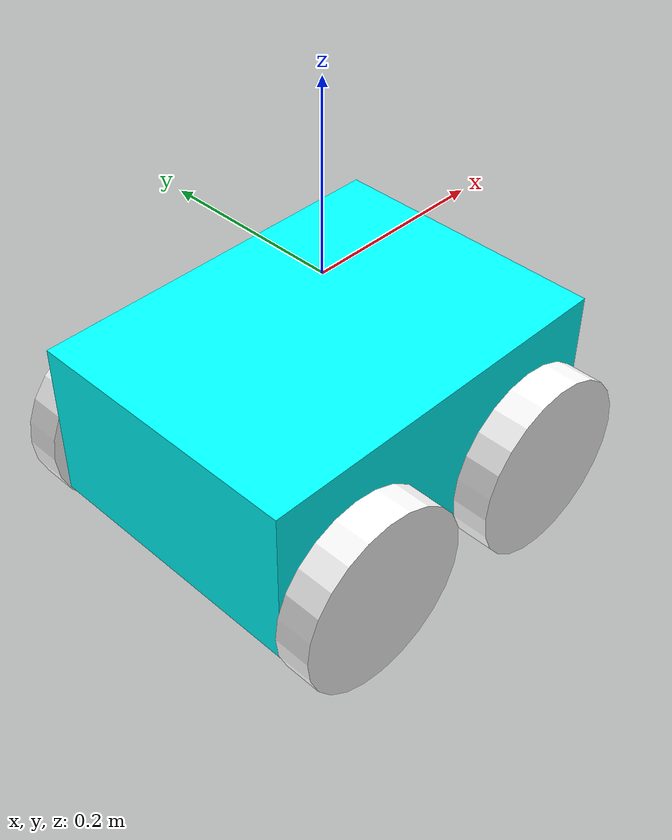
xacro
<?xml version="1.0"?>
<robot xmlns:xacro="http://www.ros.org/wiki/xacro">

  <!-- Robotaren balio konstanteak -->
  <xacro:property name="oinarri_zabalera" value="0.31"/>
  <xacro:property name="oinarri_luzera" value="0.42"/>
  <xacro:property name="oinarri_altuera" value="0.18"/>

  <xacro:property name="gurpil_erradioa" value="0.10"/>
  <xacro:property name="gurpil_zabalera" value="0.04"/>
  <xacro:property name="wheel_ygap" value="0.025"/>
  <xacro:property name="wheel_zoff" value="0.05"/>
  <xacro:property name="wheel_xoff" value="0.12"/>

  <!-- Definitu propietate inertzialak  -->
  <xacro:macro name="kutxa_inerzia" params="m w h d">
    <inertial>
      <origin xyz="0 0 0" rpy="${pi/2} 0 ${pi/2}"/>
      <mass value="${m}"/>
      <inertia ixx="${(m/12) * (h*h + d*d)}" ixy="0.0" ixz="0.0" iyy="${(m/12) * (w*w + d*d)}" iyz="0.0" izz="${(m/12) * (w*w + h*h)}"/>
    </inertial>
  </xacro:macro>

  <xacro:macro name="zilindro_inertzia" params="m r h">
    <inertial>
      <origin xyz="0 0 0" rpy="${pi/2} 0 0" />
      <mass value="${m}"/>
      <inertia ixx="${(m/12) * (3*r*r + h*h)}" ixy = "0" ixz = "0" iyy="${(m/12) * (3*r*r + h*h)}" iyz = "0" izz="${(m/2) * (r*r)}"/>
    </inertial>
  </xacro:macro>

  <!-- Robotaren basea -->
  <link name="base_link">
    <visual>
      <geometry>
        <box size="${oinarri_luzera} ${oinarri_zabalera} ${oinarri_altuera}"/>
      </geometry>
      <material name="Cyan">
        <color rgba="0 1.0 1.0 1.0"/>
      </material>
    </visual>
    <collision>
      <geometry>
        <box size="${oinarri_luzera} ${oinarri_zabalera} ${oinarri_altuera}"/>
      </geometry>
    </collision>

    <xacro:kutxa_inerzia m="15" w="${oinarri_zabalera}" d="${oinarri_luzera}" h="${oinarri_altuera}"/>
  </link>

  <!-- Robotaren Footprinta (itzala) -->
  <link name="base_footprint"/>

  <joint name="base_joint" type="fixed">
    <parent link="base_footprint"/>
    <child link="base_link"/>
    <origin xyz="0.0 0.0 ${-(gurpil_erradioa+wheel_zoff)}" rpy="0 0 0"/>
  </joint>

  <!-- Atzeko gurpilak -->
  <xacro:macro name="Atzeko_gurpilak" params="aurrizkia x_norantza y_norantza">
    <link name="${aurrizkia}_link">
      <visual>
        <origin xyz="0 0 0" rpy="${pi/2} 0 0"/>
        <geometry>
            <cylinder radius="${gurpil_erradioa}" length="${gurpil_zabalera}"/>
        </geometry>
        <material name="txuria">
          <color rgba="1 1 1 1"/>
        </material>
      </visual>

      <collision>
        <origin xyz="0 0 0" rpy="${pi/2} 0 0"/>
        <geometry>
          <cylinder radius="${gurpil_erradioa}" length="${gurpil_zabalera}"/>
        </geometry>
      </collision>

      <xacro:zilindro_inertzia m="0.5" r="${gurpil_erradioa}" h="${gurpil_zabalera}"/>
    </link>

    <joint name="${aurrizkia}_joint" type="continuous">
      <parent link="base_link"/>
      <child link="${aurrizkia}_link"/>
      <origin xyz="${x_norantza*wheel_xoff} ${y_norantza*(oinarri_zabalera/2+wheel_ygap)} ${-wheel_zoff}" rpy="0 0 0"/>
      <axis xyz="0 1 0"/>
    </joint>
  </xacro:macro>

  <xacro:Atzeko_gurpilak aurrizkia="atzekoezk_gurp" x_norantza="-1" y_norantza="1" />
  <xacro:Atzeko_gurpilak aurrizkia="atzekoesk_gurp" x_norantza="-1" y_norantza="-1" />

  <!-- Aurreko gurpilak -->
  <xacro:macro name="Aurreko_gurpila" params="aurrizkia2 x_norantza2 y_norantza2">
    <link name="${aurrizkia2}_link">
      <visual>
        <origin xyz="0 0 0" rpy="${pi/2} 0 0"/>
        <geometry>
            <cylinder radius="${gurpil_erradioa}" length="${gurpil_zabalera}"/>
        </geometry>
        <material name="txuria">
          <color rgba="1 1 1 1"/>
        </material>
      </visual>

      <collision>
        <origin xyz="0 0 0" rpy="${pi/2} 0 0"/>
        <geometry>
          <cylinder radius="${gurpil_erradioa}" length="${gurpil_zabalera}"/>
        </geometry>
      </collision>

      <xacro:zilindro_inertzia m="0.5" r="${gurpil_erradioa}" h="${gurpil_zabalera}"/>
    </link>
    <joint name="${aurrizkia2}_joint" type="continuous">
      <parent link="base_link"/>
      <child link="${aurrizkia2}_link"/>
      <origin xyz="${x_norantza2*wheel_xoff} ${y_norantza2*(oinarri_zabalera/2+wheel_ygap)} ${-wheel_zoff}" rpy="0 0 0"/>
      <axis xyz="0 1 0"/>
    </joint>
  </xacro:macro>

  <xacro:Aurreko_gurpila aurrizkia2="aurrekoezk_gurp" x_norantza2="1" y_norantza2="1" />
  <xacro:Aurreko_gurpila aurrizkia2="aurrekoesk_gurp" x_norantza2="1" y_norantza2="-1" />

</robot>
